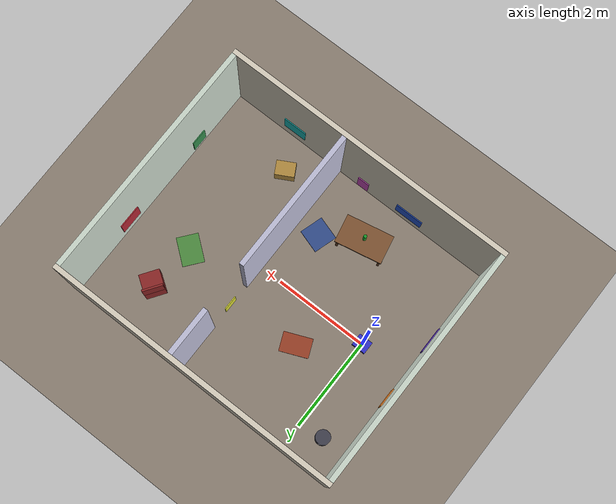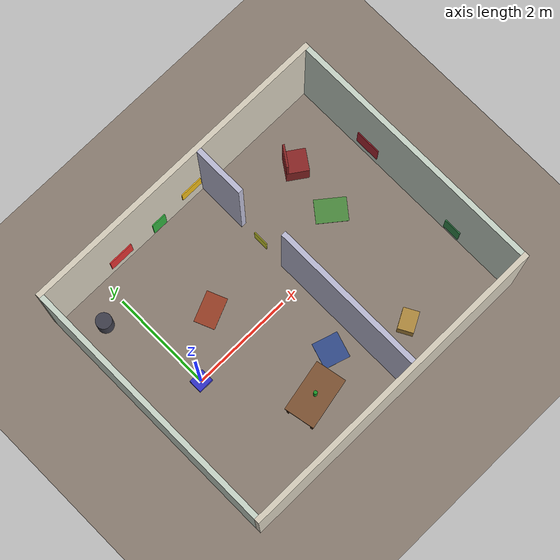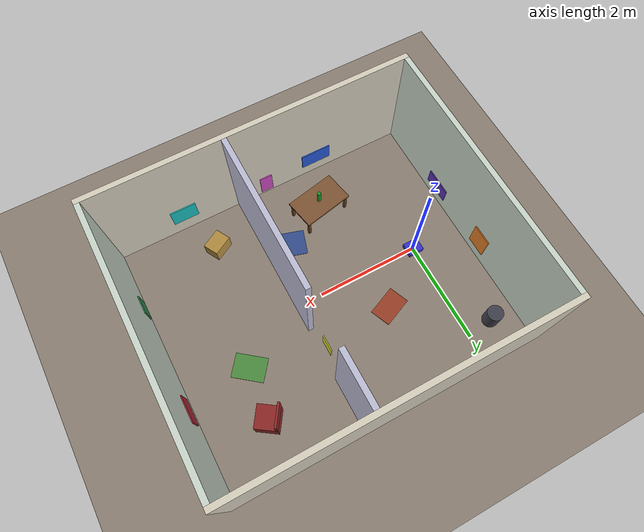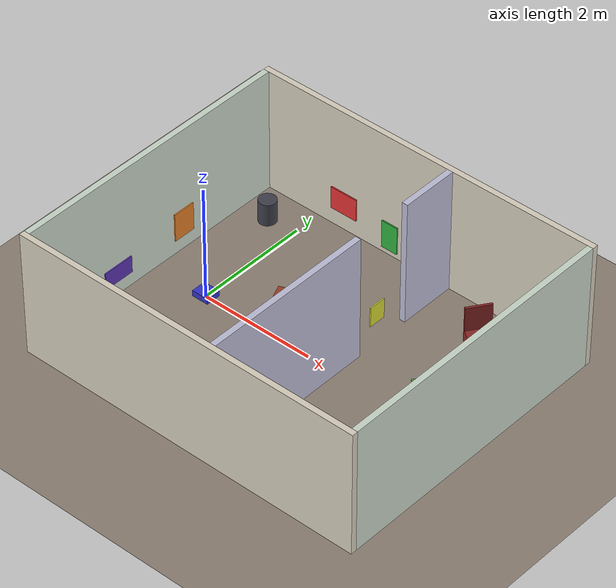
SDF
<?xml version="1.0"?>
<sdf version="1.9">
  <world name="langrobo_home">
    <physics name="step" type="ode">
      <max_step_size>0.004</max_step_size>
      <real_time_factor>1.0</real_time_factor>
    </physics>
    <plugin filename="gz-sim-physics-system" name="gz::sim::systems::Physics"/>
    <plugin filename="gz-sim-user-commands-system" name="gz::sim::systems::UserCommands"/>
    <plugin filename="gz-sim-scene-broadcaster-system" name="gz::sim::systems::SceneBroadcaster"/>
    <plugin filename="gz-sim-sensors-system" name="gz::sim::systems::Sensors">
      <render_engine>ogre2</render_engine>
    </plugin>
    <plugin filename="gz-sim-imu-system" name="gz::sim::systems::Imu"/>

    <light type="directional" name="sun">
      <cast_shadows>false</cast_shadows>
      <pose>0 0 8 0 0 0</pose>
      <diffuse>0.9 0.9 0.9 1</diffuse>
      <specular>0.1 0.1 0.1 1</specular>
      <direction>-0.3 0.2 -0.9</direction>
    </light>
    <light type="point" name="room_light">
      <cast_shadows>false</cast_shadows>
      <pose>2 0 2.4 0 0 0</pose>
      <diffuse>0.7 0.7 0.65 1</diffuse>
      <attenuation><range>12</range><linear>0.1</linear><constant>0.4</constant></attenuation>
    </light>

    <model name="ground">
      <static>true</static>
      <link name="link">
        <collision name="col">
          <geometry><plane><normal>0 0 1</normal><size>20 20</size></plane></geometry>
          <surface><friction><ode><mu>1.0</mu><mu2>1.0</mu2></ode></friction></surface>
        </collision>
        <visual name="vis">
          <geometry><plane><normal>0 0 1</normal><size>20 20</size></plane></geometry>
          <material><ambient>0.55 0.5 0.45 1</ambient><diffuse>0.55 0.5 0.45 1</diffuse></material>
        </visual>
      </link>
    </model>

    <!-- ===== room shell: x in [-1, 5], y in [-2.5, 2.5], walls 2.2 high -->
    <model name="wall_north"><static>true</static><pose>2 2.55 1.1 0 0 0</pose>
      <link name="l"><collision name="c"><geometry><box><size>6.2 0.1 2.2</size></box></geometry></collision>
      <visual name="v"><geometry><box><size>6.2 0.1 2.2</size></box></geometry>
      <material><ambient>0.85 0.82 0.75 1</ambient><diffuse>0.85 0.82 0.75 1</diffuse></material></visual></link></model>
    <model name="wall_south"><static>true</static><pose>2 -2.55 1.1 0 0 0</pose>
      <link name="l"><collision name="c"><geometry><box><size>6.2 0.1 2.2</size></box></geometry></collision>
      <visual name="v"><geometry><box><size>6.2 0.1 2.2</size></box></geometry>
      <material><ambient>0.85 0.82 0.75 1</ambient><diffuse>0.85 0.82 0.75 1</diffuse></material></visual></link></model>
    <model name="wall_west"><static>true</static><pose>-1.05 0 1.1 0 0 0</pose>
      <link name="l"><collision name="c"><geometry><box><size>0.1 5.0 2.2</size></box></geometry></collision>
      <visual name="v"><geometry><box><size>0.1 5.0 2.2</size></box></geometry>
      <material><ambient>0.8 0.85 0.8 1</ambient><diffuse>0.8 0.85 0.8 1</diffuse></material></visual></link></model>
    <model name="wall_east"><static>true</static><pose>5.05 0 1.1 0 0 0</pose>
      <link name="l"><collision name="c"><geometry><box><size>0.1 5.0 2.2</size></box></geometry></collision>
      <visual name="v"><geometry><box><size>0.1 5.0 2.2</size></box></geometry>
      <material><ambient>0.8 0.85 0.8 1</ambient><diffuse>0.8 0.85 0.8 1</diffuse></material></visual></link></model>

    <!-- inner wall at x=2.5 with a 1m doorway (y 0.5..1.5) -->
    <model name="wall_inner_a"><static>true</static><pose>2.5 -1.0 1.1 0 0 0</pose>
      <link name="l"><collision name="c"><geometry><box><size>0.1 3.0 2.2</size></box></geometry></collision>
      <visual name="v"><geometry><box><size>0.1 3.0 2.2</size></box></geometry>
      <material><ambient>0.75 0.75 0.85 1</ambient><diffuse>0.75 0.75 0.85 1</diffuse></material></visual></link></model>
    <model name="wall_inner_b"><static>true</static><pose>2.5 2.0 1.1 0 0 0</pose>
      <link name="l"><collision name="c"><geometry><box><size>0.1 1.0 2.2</size></box></geometry></collision>
      <visual name="v"><geometry><box><size>0.1 1.0 2.2</size></box></geometry>
      <material><ambient>0.75 0.75 0.85 1</ambient><diffuse>0.75 0.75 0.85 1</diffuse></material></visual></link></model>

    <!-- ===== visual-feature patches ("posters") on walls, camera height -->
    <model name="poster_1"><static>true</static><pose>0.5 2.49 0.5 0 0 0</pose><link name="l">
      <visual name="v"><geometry><box><size>0.5 0.02 0.4</size></box></geometry>
      <material><ambient>0.9 0.2 0.2 1</ambient><diffuse>0.9 0.2 0.2 1</diffuse></material></visual></link></model>
    <model name="poster_2"><static>true</static><pose>1.4 2.49 0.35 0 0 0</pose><link name="l">
      <visual name="v"><geometry><box><size>0.3 0.02 0.5</size></box></geometry>
      <material><ambient>0.2 0.7 0.25 1</ambient><diffuse>0.2 0.7 0.25 1</diffuse></material></visual></link></model>
    <model name="poster_3"><static>true</static><pose>2.2 2.49 0.6 0 0 0</pose><link name="l">
      <visual name="v"><geometry><box><size>0.45 0.02 0.3</size></box></geometry>
      <material><ambient>0.95 0.75 0.1 1</ambient><diffuse>0.95 0.75 0.1 1</diffuse></material></visual></link></model>
    <model name="poster_4"><static>true</static><pose>0.8 -2.49 0.45 0 0 0</pose><link name="l">
      <visual name="v"><geometry><box><size>0.6 0.02 0.35</size></box></geometry>
      <material><ambient>0.15 0.35 0.85 1</ambient><diffuse>0.15 0.35 0.85 1</diffuse></material></visual></link></model>
    <model name="poster_5"><static>true</static><pose>1.9 -2.49 0.3 0 0 0</pose><link name="l">
      <visual name="v"><geometry><box><size>0.25 0.02 0.45</size></box></geometry>
      <material><ambient>0.8 0.3 0.75 1</ambient><diffuse>0.8 0.3 0.75 1</diffuse></material></visual></link></model>
    <model name="poster_6"><static>true</static><pose>3.6 -2.49 0.55 0 0 0</pose><link name="l">
      <visual name="v"><geometry><box><size>0.5 0.02 0.4</size></box></geometry>
      <material><ambient>0.1 0.75 0.75 1</ambient><diffuse>0.1 0.75 0.75 1</diffuse></material></visual></link></model>
    <model name="poster_7"><static>true</static><pose>-0.99 0.6 0.5 0 0 1.5708</pose><link name="l">
      <visual name="v"><geometry><box><size>0.4 0.02 0.5</size></box></geometry>
      <material><ambient>0.9 0.5 0.15 1</ambient><diffuse>0.9 0.5 0.15 1</diffuse></material></visual></link></model>
    <model name="poster_8"><static>true</static><pose>-0.99 -0.8 0.4 0 0 1.5708</pose><link name="l">
      <visual name="v"><geometry><box><size>0.55 0.02 0.3</size></box></geometry>
      <material><ambient>0.35 0.2 0.7 1</ambient><diffuse>0.35 0.2 0.7 1</diffuse></material></visual></link></model>
    <model name="poster_9"><static>true</static><pose>4.99 0.9 0.5 0 0 1.5708</pose><link name="l">
      <visual name="v"><geometry><box><size>0.5 0.02 0.45</size></box></geometry>
      <material><ambient>0.7 0.15 0.2 1</ambient><diffuse>0.7 0.15 0.2 1</diffuse></material></visual></link></model>
    <model name="poster_10"><static>true</static><pose>4.99 -1.2 0.35 0 0 1.5708</pose><link name="l">
      <visual name="v"><geometry><box><size>0.35 0.02 0.4</size></box></geometry>
      <material><ambient>0.2 0.55 0.3 1</ambient><diffuse>0.2 0.55 0.3 1</diffuse></material></visual></link></model>
    <model name="poster_11"><static>true</static><pose>2.44 1.0 0.45 0 0 1.5708</pose><link name="l">
      <visual name="v"><geometry><box><size>0.3 0.02 0.35</size></box></geometry>
      <material><ambient>0.85 0.85 0.2 1</ambient><diffuse>0.85 0.85 0.2 1</diffuse></material></visual></link></model>

    <!-- floor patches (features at ground level) -->
    <model name="mat_1"><static>true</static><pose>1.0 0.8 0.006 0 0 0.4</pose><link name="l">
      <visual name="v"><geometry><box><size>0.6 0.4 0.01</size></box></geometry>
      <material><ambient>0.6 0.25 0.15 1</ambient><diffuse>0.6 0.25 0.15 1</diffuse></material></visual></link></model>
    <model name="mat_2"><static>true</static><pose>2.0 -1.2 0.006 0 0 -0.3</pose><link name="l">
      <visual name="v"><geometry><box><size>0.5 0.5 0.01</size></box></geometry>
      <material><ambient>0.2 0.3 0.55 1</ambient><diffuse>0.2 0.3 0.55 1</diffuse></material></visual></link></model>
    <model name="mat_3"><static>true</static><pose>3.8 0.6 0.006 0 0 0.9</pose><link name="l">
      <visual name="v"><geometry><box><size>0.45 0.6 0.01</size></box></geometry>
      <material><ambient>0.3 0.55 0.25 1</ambient><diffuse>0.3 0.55 0.25 1</diffuse></material></visual></link></model>

    <!-- ===== furniture / obstacles -->
    <model name="table"><static>true</static><pose>1.2 -1.6 0 0 0 0.2</pose>
      <link name="l">
        <collision name="top_c"><pose>0 0 0.42 0 0 0</pose><geometry><box><size>1.0 0.6 0.04</size></box></geometry></collision>
        <visual name="top_v"><pose>0 0 0.42 0 0 0</pose><geometry><box><size>1.0 0.6 0.04</size></box></geometry>
          <material><ambient>0.5 0.33 0.2 1</ambient><diffuse>0.5 0.33 0.2 1</diffuse></material></visual>
        <collision name="leg1_c"><pose>0.45 0.25 0.2 0 0 0</pose><geometry><box><size>0.05 0.05 0.4</size></box></geometry></collision>
        <visual name="leg1_v"><pose>0.45 0.25 0.2 0 0 0</pose><geometry><box><size>0.05 0.05 0.4</size></box></geometry>
          <material><ambient>0.4 0.26 0.15 1</ambient><diffuse>0.4 0.26 0.15 1</diffuse></material></visual>
        <collision name="leg2_c"><pose>0.45 -0.25 0.2 0 0 0</pose><geometry><box><size>0.05 0.05 0.4</size></box></geometry></collision>
        <visual name="leg2_v"><pose>0.45 -0.25 0.2 0 0 0</pose><geometry><box><size>0.05 0.05 0.4</size></box></geometry>
          <material><ambient>0.4 0.26 0.15 1</ambient><diffuse>0.4 0.26 0.15 1</diffuse></material></visual>
        <collision name="leg3_c"><pose>-0.45 0.25 0.2 0 0 0</pose><geometry><box><size>0.05 0.05 0.4</size></box></geometry></collision>
        <visual name="leg3_v"><pose>-0.45 0.25 0.2 0 0 0</pose><geometry><box><size>0.05 0.05 0.4</size></box></geometry>
          <material><ambient>0.4 0.26 0.15 1</ambient><diffuse>0.4 0.26 0.15 1</diffuse></material></visual>
        <collision name="leg4_c"><pose>-0.45 -0.25 0.2 0 0 0</pose><geometry><box><size>0.05 0.05 0.4</size></box></geometry></collision>
        <visual name="leg4_v"><pose>-0.45 -0.25 0.2 0 0 0</pose><geometry><box><size>0.05 0.05 0.4</size></box></geometry>
          <material><ambient>0.4 0.26 0.15 1</ambient><diffuse>0.4 0.26 0.15 1</diffuse></material></visual>
      </link></model>

    <!-- "bottle" on the table: right size/shape for the class, and a
         graspable nav target for go-object missions -->
    <model name="bottle"><static>true</static><pose>1.2 -1.6 0.565 0 0 0</pose>
      <link name="l">
        <collision name="c"><geometry><cylinder><radius>0.035</radius><length>0.25</length></cylinder></geometry></collision>
        <visual name="v"><geometry><cylinder><radius>0.035</radius><length>0.25</length></cylinder></geometry>
          <material><ambient>0.1 0.6 0.15 1</ambient><diffuse>0.1 0.6 0.15 1</diffuse></material></visual>
      </link></model>

    <model name="chair_1"><static>true</static><pose>3.9 1.6 0 0 0 -0.6</pose>
      <link name="l">
        <collision name="seat_c"><pose>0 0 0.225 0 0 0</pose><geometry><box><size>0.42 0.42 0.45</size></box></geometry></collision>
        <visual name="seat_v"><pose>0 0 0.225 0 0 0</pose><geometry><box><size>0.42 0.42 0.45</size></box></geometry>
          <material><ambient>0.55 0.15 0.15 1</ambient><diffuse>0.55 0.15 0.15 1</diffuse></material></visual>
        <collision name="back_c"><pose>-0.19 0 0.65 0 0 0</pose><geometry><box><size>0.04 0.42 0.45</size></box></geometry></collision>
        <visual name="back_v"><pose>-0.19 0 0.65 0 0 0</pose><geometry><box><size>0.04 0.42 0.45</size></box></geometry>
          <material><ambient>0.55 0.15 0.15 1</ambient><diffuse>0.55 0.15 0.15 1</diffuse></material></visual>
      </link></model>

    <model name="bin"><static>true</static><pose>-0.5 1.9 0.2 0 0 0</pose>
      <link name="l">
        <collision name="c"><geometry><cylinder><radius>0.15</radius><length>0.4</length></cylinder></geometry></collision>
        <visual name="v"><geometry><cylinder><radius>0.15</radius><length>0.4</length></cylinder></geometry>
          <material><ambient>0.25 0.25 0.3 1</ambient><diffuse>0.25 0.25 0.3 1</diffuse></material></visual>
      </link></model>

    <model name="crate"><static>true</static><pose>3.3 -1.8 0.15 0 0 0.5</pose>
      <link name="l">
        <collision name="c"><geometry><box><size>0.4 0.3 0.3</size></box></geometry></collision>
        <visual name="v"><geometry><box><size>0.4 0.3 0.3</size></box></geometry>
          <material><ambient>0.7 0.55 0.25 1</ambient><diffuse>0.7 0.55 0.25 1</diffuse></material></visual>
      </link></model>

    <!-- the rover, parked at the origin facing +x (fresh SLAM origin) -->
    <include>
      <uri>model://rover</uri>
      <pose>0 0 0 0 0 0</pose>
    </include>
  </world>
</sdf>

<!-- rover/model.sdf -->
<sdf version="1.9">
  <model name="rover">
    <link name="base_link">
      <pose>0 0 0.06 0 0 0</pose>
      <inertial>
        <mass>2.0</mass>
        <inertia><ixx>0.013</ixx><iyy>0.017</iyy><izz>0.026</izz>
                 <ixy>0</ixy><ixz>0</ixz><iyz>0</iyz></inertia>
      </inertial>
      <collision name="chassis_col">
        <geometry><box><size>0.30 0.26 0.10</size></box></geometry>
      </collision>
      <visual name="chassis_vis">
        <geometry><box><size>0.30 0.26 0.10</size></box></geometry>
        <material><ambient>0.2 0.2 0.8 1</ambient><diffuse>0.2 0.2 0.8 1</diffuse></material>
      </visual>

      <sensor name="infra1" type="camera">
        <!-- infra1 viewpoint: run_robot_tf.sh mount offset relative to base
             center (base_link is 0.06 above ground; camera at z 0.25) -->
        <pose>0.10 0 0.19 0 0 0</pose>
        <topic>/rover_sim/infra1/image</topic>
        <gz_frame_id>camera0_infra1_optical_frame</gz_frame_id>
        <update_rate>15</update_rate>
        <camera>
          <camera_info_topic>/rover_sim/infra1/camera_info</camera_info_topic>
          <!-- hfov = 2*atan(896 / (2*448.284)) from captured infra1 fx -->
          <horizontal_fov>1.5702</horizontal_fov>
          <image><width>896</width><height>504</height><format>L8</format></image>
          <clip><near>0.15</near><far>12.0</far></clip>
        </camera>
      </sensor>

      <sensor name="depth" type="depth_camera">
        <!-- same viewpoint as infra1, like the real depth engine -->
        <pose>0.10 0 0.19 0 0 0</pose>
        <topic>/rover_sim/depth/image</topic>
        <gz_frame_id>camera0_depth_optical_frame</gz_frame_id>
        <update_rate>15</update_rate>
        <camera>
          <camera_info_topic>/rover_sim/depth/camera_info</camera_info_topic>
          <horizontal_fov>1.5702</horizontal_fov>
          <image><width>896</width><height>504</height><format>R_FLOAT32</format></image>
          <clip><near>0.30</near><far>9.0</far></clip>
          <!-- real depth is noisy with the IR emitter off — do not simulate
               a perfect sensor -->
          <noise><type>gaussian</type><mean>0.0</mean><stddev>0.007</stddev></noise>
        </camera>
      </sensor>

      <sensor name="color" type="camera">
        <!-- color extrinsic: y -0.059 from camera0_link (captured tf_static) -->
        <pose>0.10 -0.059 0.19 0 0 0</pose>
        <topic>/rover_sim/color/image</topic>
        <gz_frame_id>camera0_color_optical_frame</gz_frame_id>
        <update_rate>15</update_rate>
        <camera>
          <camera_info_topic>/rover_sim/color/camera_info</camera_info_topic>
          <!-- hfov = 2*atan(896 / (2*450.262)) from captured color fx -->
          <horizontal_fov>1.5658</horizontal_fov>
          <image><width>896</width><height>504</height><format>R8G8B8</format></image>
          <clip><near>0.15</near><far>12.0</far></clip>
        </camera>
      </sensor>

      <sensor name="imu" type="imu">
        <!-- camera0_motion_frame == camera0_link (captured tf_static) -->
        <pose>0.10 0 0.19 0 0 0</pose>
        <topic>/rover_sim/imu</topic>
        <update_rate>200</update_rate>
      </sensor>
    </link>

    <link name="left_wheel">
      <pose>0 0.12 0.0325 -1.5707963 0 0</pose>
      <inertial>
        <mass>0.05</mass>
        <inertia><ixx>2e-5</ixx><iyy>2e-5</iyy><izz>3e-5</izz>
                 <ixy>0</ixy><ixz>0</ixz><iyz>0</iyz></inertia>
      </inertial>
      <collision name="col">
        <geometry><cylinder><radius>0.0325</radius><length>0.02</length></cylinder></geometry>
        <surface><friction><ode><mu>1.0</mu><mu2>1.0</mu2></ode></friction></surface>
      </collision>
      <visual name="vis">
        <geometry><cylinder><radius>0.0325</radius><length>0.02</length></cylinder></geometry>
        <material><ambient>0.1 0.1 0.1 1</ambient><diffuse>0.1 0.1 0.1 1</diffuse></material>
      </visual>
    </link>

    <link name="right_wheel">
      <pose>0 -0.12 0.0325 -1.5707963 0 0</pose>
      <inertial>
        <mass>0.05</mass>
        <inertia><ixx>2e-5</ixx><iyy>2e-5</iyy><izz>3e-5</izz>
                 <ixy>0</ixy><ixz>0</ixz><iyz>0</iyz></inertia>
      </inertial>
      <collision name="col">
        <geometry><cylinder><radius>0.0325</radius><length>0.02</length></cylinder></geometry>
        <surface><friction><ode><mu>1.0</mu><mu2>1.0</mu2></ode></friction></surface>
      </collision>
      <visual name="vis">
        <geometry><cylinder><radius>0.0325</radius><length>0.02</length></cylinder></geometry>
        <material><ambient>0.1 0.1 0.1 1</ambient><diffuse>0.1 0.1 0.1 1</diffuse></material>
      </visual>
    </link>

    <link name="front_caster">
      <pose>0.12 0 0.02 0 0 0</pose>
      <inertial>
        <mass>0.02</mass>
        <inertia><ixx>3e-6</ixx><iyy>3e-6</iyy><izz>3e-6</izz>
                 <ixy>0</ixy><ixz>0</ixz><iyz>0</iyz></inertia>
      </inertial>
      <collision name="col">
        <geometry><sphere><radius>0.02</radius></sphere></geometry>
        <surface><friction><ode><mu>0.0</mu><mu2>0.0</mu2></ode></friction></surface>
      </collision>
      <visual name="vis"><geometry><sphere><radius>0.02</radius></sphere></geometry></visual>
    </link>

    <link name="rear_caster">
      <pose>-0.12 0 0.02 0 0 0</pose>
      <inertial>
        <mass>0.02</mass>
        <inertia><ixx>3e-6</ixx><iyy>3e-6</iyy><izz>3e-6</izz>
                 <ixy>0</ixy><ixz>0</ixz><iyz>0</iyz></inertia>
      </inertial>
      <collision name="col">
        <geometry><sphere><radius>0.02</radius></sphere></geometry>
        <surface><friction><ode><mu>0.0</mu><mu2>0.0</mu2></ode></friction></surface>
      </collision>
      <visual name="vis"><geometry><sphere><radius>0.02</radius></sphere></geometry></visual>
    </link>

    <joint name="left_wheel_joint" type="revolute">
      <parent>base_link</parent><child>left_wheel</child>
      <axis><xyz>0 0 1</xyz><limit><lower>-1e16</lower><upper>1e16</upper></limit></axis>
    </joint>
    <joint name="right_wheel_joint" type="revolute">
      <parent>base_link</parent><child>right_wheel</child>
      <axis><xyz>0 0 1</xyz><limit><lower>-1e16</lower><upper>1e16</upper></limit></axis>
    </joint>
    <joint name="front_caster_joint" type="ball">
      <parent>base_link</parent><child>front_caster</child>
    </joint>
    <joint name="rear_caster_joint" type="ball">
      <parent>base_link</parent><child>rear_caster</child>
    </joint>

    <plugin filename="gz-sim-diff-drive-system" name="gz::sim::systems::DiffDrive">
      <left_joint>left_wheel_joint</left_joint>
      <right_joint>right_wheel_joint</right_joint>
      <wheel_separation>0.24</wheel_separation>
      <wheel_radius>0.0325</wheel_radius>
      <!-- driven ONLY by contract_bridge.py after firmware emulation
           (deadband + watchdog) — never bridge /cmd_vel here directly -->
      <topic>/rover_sim/drive_cmd</topic>
      <odom_publish_frequency>1</odom_publish_frequency>
    </plugin>
  </model>
</sdf>
